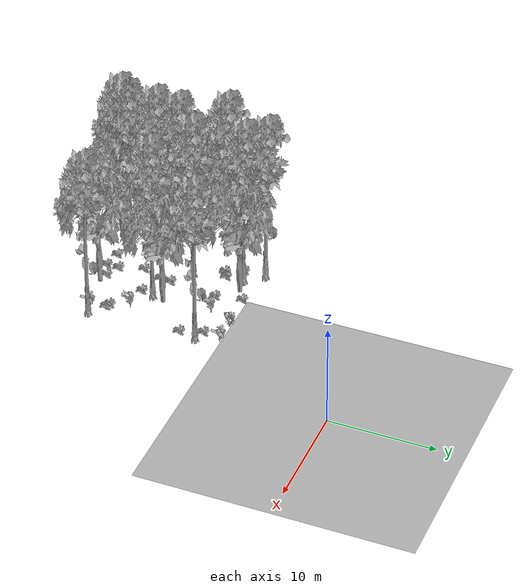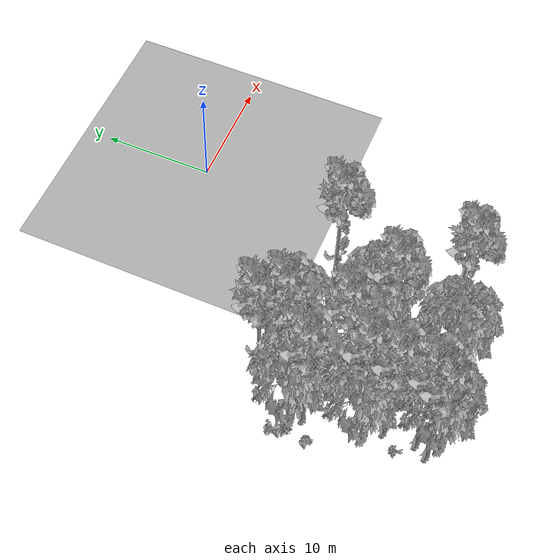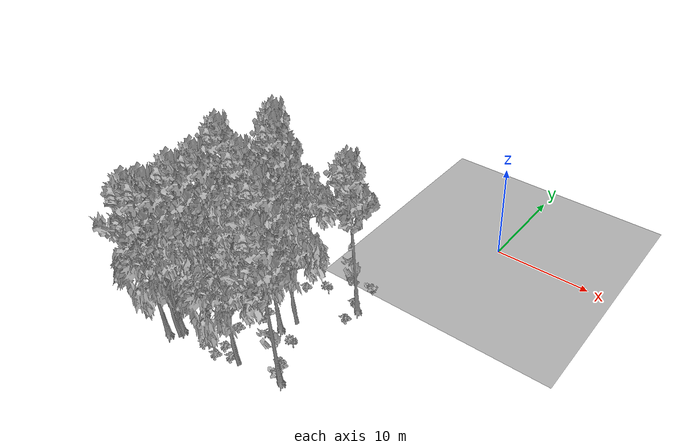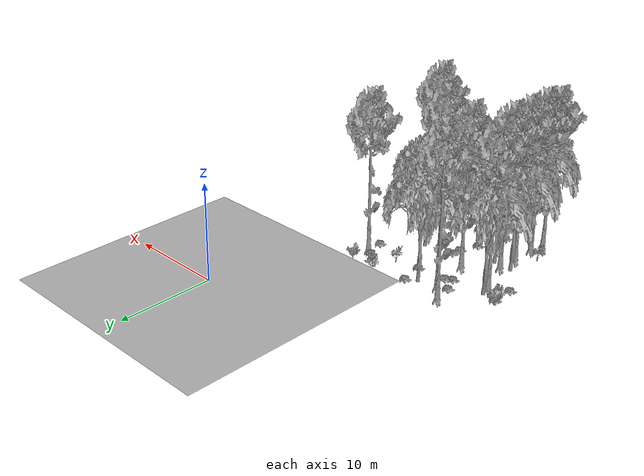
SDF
<sdf version="1.7">
 <world name="default">
  <model name="ground_plane">
   <static>1</static>
   <link name="link">
    <collision name="collision">
     <pose>-50 0 0 0 -0 0</pose>
     <geometry><plane><normal>0 0 1</normal><size>80 80</size></plane></geometry>
     <surface><contact><ode><min_depth>0.01</min_depth><max_vel>0</max_vel></ode></contact></surface>
    </collision>
    <visual name="grass">
     <cast_shadows>0</cast_shadows>
     <geometry>
      <mesh>
       <scale>0.46714285714285714 0.46714285714285714 0.1</scale>
       <uri>file://grass_plane/meshes/grass_plane.dae</uri>
      </mesh>
     </geometry>
    </visual>
   </link>
  </model>
  <model name="Tree 7">
   <static>1</static>
   <pose>-9.91721672211478 -19.705225154479045 0 1.57079 -0 0</pose>
   <link name="link">
    <collision name="collision">
     <geometry><mesh><scale>3.5 5 3.5</scale><uri>model://tree_2/meshes/tree_2.obj</uri></mesh></geometry>
    </collision>
    <visual name="visual">
     <geometry><mesh><scale>3.5 5 3.5</scale><uri>model://tree_2/meshes/tree_2.obj</uri></mesh></geometry>
    </visual>
   </link>
  </model>
  <model name="Tree 54">
   <static>1</static>
   <pose>-17.710755358752795 -26.39936232962456 0 1.57079 -0 0</pose>
   <link name="link">
    <collision name="collision">
     <geometry><mesh><scale>3.5 5 3.5</scale><uri>model://tree_9/meshes/tree_9.obj</uri></mesh></geometry>
    </collision>
    <visual name="visual">
     <geometry><mesh><scale>3.5 5 3.5</scale><uri>model://tree_9/meshes/tree_9.obj</uri></mesh></geometry>
    </visual>
   </link>
  </model>
  <model name="Tree 73">
   <static>1</static>
   <pose>-17.76514542164429 -23.691260203305006 0 1.57079 -0 0</pose>
   <link name="link">
    <collision name="collision">
     <geometry><mesh><scale>3.5 5 3.5</scale><uri>model://tree_9/meshes/tree_9.obj</uri></mesh></geometry>
    </collision>
    <visual name="visual">
     <geometry><mesh><scale>3.5 5 3.5</scale><uri>model://tree_9/meshes/tree_9.obj</uri></mesh></geometry>
    </visual>
   </link>
  </model>
  <model name="Tree 135">
   <static>1</static>
   <pose>-15.737919671115595 -14.26291653973152 0 1.57079 -0 0</pose>
   <link name="link">
    <collision name="collision">
     <geometry><mesh><scale>3.5 5 3.5</scale><uri>model://tree_9/meshes/tree_9.obj</uri></mesh></geometry>
    </collision>
    <visual name="visual">
     <geometry><mesh><scale>3.5 5 3.5</scale><uri>model://tree_9/meshes/tree_9.obj</uri></mesh></geometry>
    </visual>
   </link>
  </model>
  <model name="Tree 173">
   <static>1</static>
   <pose>-17.65346674269135 -21.420033571382895 0 1.57079 -0 0</pose>
   <link name="link">
    <collision name="collision">
     <geometry><mesh><scale>3.5 5 3.5</scale><uri>model://tree_9/meshes/tree_9.obj</uri></mesh></geometry>
    </collision>
    <visual name="visual">
     <geometry><mesh><scale>3.5 5 3.5</scale><uri>model://tree_9/meshes/tree_9.obj</uri></mesh></geometry>
    </visual>
   </link>
  </model>
  <model name="Tree 214">
   <static>1</static>
   <pose>-6.256352994503658 -25.466916737139194 0 1.57079 -0 0</pose>
   <link name="link">
    <collision name="collision">
     <geometry><mesh><scale>3.5 5 3.5</scale><uri>model://tree_9/meshes/tree_9.obj</uri></mesh></geometry>
    </collision>
    <visual name="visual">
     <geometry><mesh><scale>3.5 5 3.5</scale><uri>model://tree_9/meshes/tree_9.obj</uri></mesh></geometry>
    </visual>
   </link>
  </model>
  <model name="Tree 216">
   <static>1</static>
   <pose>-14.936506121851796 -18.89699828799584 0 1.57079 -0 0</pose>
   <link name="link">
    <collision name="collision">
     <geometry><mesh><scale>3.5 5 3.5</scale><uri>model://tree_9/meshes/tree_9.obj</uri></mesh></geometry>
    </collision>
    <visual name="visual">
     <geometry><mesh><scale>3.5 5 3.5</scale><uri>model://tree_9/meshes/tree_9.obj</uri></mesh></geometry>
    </visual>
   </link>
  </model>
  <model name="Tree 225">
   <static>1</static>
   <pose>-16.878159743785982 -21.756091137322215 0 1.57079 -0 0</pose>
   <link name="link">
    <collision name="collision">
     <geometry><mesh><scale>3.5 5 3.5</scale><uri>model://tree_2/meshes/tree_2.obj</uri></mesh></geometry>
    </collision>
    <visual name="visual">
     <geometry><mesh><scale>3.5 5 3.5</scale><uri>model://tree_2/meshes/tree_2.obj</uri></mesh></geometry>
    </visual>
   </link>
  </model>
  <model name="Tree 407">
   <static>1</static>
   <pose>-18.809957743463087 -21.64953178475183 0 1.57079 -0 0</pose>
   <link name="link">
    <collision name="collision">
     <geometry><mesh><scale>3.5 5 3.5</scale><uri>model://tree_2/meshes/tree_2.obj</uri></mesh></geometry>
    </collision>
    <visual name="visual">
     <geometry><mesh><scale>3.5 5 3.5</scale><uri>model://tree_2/meshes/tree_2.obj</uri></mesh></geometry>
    </visual>
   </link>
  </model>
  <model name="Tree 430">
   <static>1</static>
   <pose>-10.585680097771792 -26.238406518092148 0 1.57079 -0 0</pose>
   <link name="link">
    <collision name="collision">
     <geometry><mesh><scale>3.5 5 3.5</scale><uri>model://tree_2/meshes/tree_2.obj</uri></mesh></geometry>
    </collision>
    <visual name="visual">
     <geometry><mesh><scale>3.5 5 3.5</scale><uri>model://tree_2/meshes/tree_2.obj</uri></mesh></geometry>
    </visual>
   </link>
  </model>
  <model name="Tree 450">
   <static>1</static>
   <pose>-17.30246695253707 -27.036633931299825 0 1.57079 -0 0</pose>
   <link name="link">
    <collision name="collision">
     <geometry><mesh><scale>3.5 5 3.5</scale><uri>model://tree_2/meshes/tree_2.obj</uri></mesh></geometry>
    </collision>
    <visual name="visual">
     <geometry><mesh><scale>3.5 5 3.5</scale><uri>model://tree_2/meshes/tree_2.obj</uri></mesh></geometry>
    </visual>
   </link>
  </model>
  <model name="Tree 513">
   <static>1</static>
   <pose>-6.413283700891597 -15.064738168379428 0 1.57079 -0 0</pose>
   <link name="link">
    <collision name="collision">
     <geometry><mesh><scale>3.5 5 3.5</scale><uri>model://tree_9/meshes/tree_9.obj</uri></mesh></geometry>
    </collision>
    <visual name="visual">
     <geometry><mesh><scale>3.5 5 3.5</scale><uri>model://tree_9/meshes/tree_9.obj</uri></mesh></geometry>
    </visual>
   </link>
  </model>
  <model name="Tree 527">
   <static>1</static>
   <pose>-18.360338973357162 -27.45377638580254 0 1.57079 -0 0</pose>
   <link name="link">
    <collision name="collision">
     <geometry><mesh><scale>3.5 5 3.5</scale><uri>model://tree_9/meshes/tree_9.obj</uri></mesh></geometry>
    </collision>
    <visual name="visual">
     <geometry><mesh><scale>3.5 5 3.5</scale><uri>model://tree_9/meshes/tree_9.obj</uri></mesh></geometry>
    </visual>
   </link>
  </model>
  <model name="Tree 541">
   <static>1</static>
   <pose>-17.09179222391935 -12.640737541273293 0 1.57079 -0 0</pose>
   <link name="link">
    <collision name="collision">
     <geometry><mesh><scale>3.5 5 3.5</scale><uri>model://tree_9/meshes/tree_9.obj</uri></mesh></geometry>
    </collision>
    <visual name="visual">
     <geometry><mesh><scale>3.5 5 3.5</scale><uri>model://tree_9/meshes/tree_9.obj</uri></mesh></geometry>
    </visual>
   </link>
  </model>
  <model name="Tree 570">
   <static>1</static>
   <pose>-19.642768826614297 -16.31144040488615 0 1.57079 -0 0</pose>
   <link name="link">
    <collision name="collision">
     <geometry><mesh><scale>3.5 5 3.5</scale><uri>model://tree_2/meshes/tree_2.obj</uri></mesh></geometry>
    </collision>
    <visual name="visual">
     <geometry><mesh><scale>3.5 5 3.5</scale><uri>model://tree_2/meshes/tree_2.obj</uri></mesh></geometry>
    </visual>
   </link>
  </model>
  <model name="Tree 592">
   <static>1</static>
   <pose>-10.60628654105522 -21.030751804089192 0 1.57079 -0 0</pose>
   <link name="link">
    <collision name="collision">
     <geometry><mesh><scale>3.5 5 3.5</scale><uri>model://tree_9/meshes/tree_9.obj</uri></mesh></geometry>
    </collision>
    <visual name="visual">
     <geometry><mesh><scale>3.5 5 3.5</scale><uri>model://tree_9/meshes/tree_9.obj</uri></mesh></geometry>
    </visual>
   </link>
  </model>
  <model name="Tree 624">
   <static>1</static>
   <pose>-19.289551704786003 -17.352481598600598 0 1.57079 -0 0</pose>
   <link name="link">
    <collision name="collision">
     <geometry><mesh><scale>3.5 5 3.5</scale><uri>model://tree_9/meshes/tree_9.obj</uri></mesh></geometry>
    </collision>
    <visual name="visual">
     <geometry><mesh><scale>3.5 5 3.5</scale><uri>model://tree_9/meshes/tree_9.obj</uri></mesh></geometry>
    </visual>
   </link>
  </model>
  <model name="Tree 626">
   <static>1</static>
   <pose>-13.913481211768751 -13.856674592326286 0 1.57079 -0 0</pose>
   <link name="link">
    <collision name="collision">
     <geometry><mesh><scale>3.5 5 3.5</scale><uri>model://tree_2/meshes/tree_2.obj</uri></mesh></geometry>
    </collision>
    <visual name="visual">
     <geometry><mesh><scale>3.5 5 3.5</scale><uri>model://tree_2/meshes/tree_2.obj</uri></mesh></geometry>
    </visual>
   </link>
  </model>
  <model name="Bush 1">
   <static>1</static>
   <pose>-13.000303820560038 -26.70675213427949 0 1.57079 -0 0</pose>
   <link name="link">
    <collision name="collision">
     <geometry><mesh><scale>2 2 2</scale><uri>model://bush_2/meshes/bush_2.obj</uri></mesh></geometry>
     <surface><contact><collide_without_contact>false</collide_without_contact></contact></surface>
    </collision>
    <visual name="visual">
     <geometry><mesh><scale>2 2 2</scale><uri>model://bush_2/meshes/bush_2.obj</uri></mesh></geometry>
    </visual>
   </link>
  </model>
  <model name="Bush 9">
   <static>1</static>
   <pose>-15.450037730005189 -15.872649282570617 0 1.57079 -0 0</pose>
   <link name="link">
    <collision name="collision">
     <geometry><mesh><scale>2 2 2</scale><uri>model://bush_2/meshes/bush_2.obj</uri></mesh></geometry>
     <surface><contact><collide_without_contact>false</collide_without_contact></contact></surface>
    </collision>
    <visual name="visual">
     <geometry><mesh><scale>2 2 2</scale><uri>model://bush_2/meshes/bush_2.obj</uri></mesh></geometry>
    </visual>
   </link>
  </model>
  <model name="Bush 90">
   <static>1</static>
   <pose>-21.056077198665726 -16.07867374437209 0 1.57079 -0 0</pose>
   <link name="link">
    <collision name="collision">
     <geometry><mesh><scale>2 2 2</scale><uri>model://bush_2/meshes/bush_2.obj</uri></mesh></geometry>
     <surface><contact><collide_without_contact>false</collide_without_contact></contact></surface>
    </collision>
    <visual name="visual">
     <geometry><mesh><scale>2 2 2</scale><uri>model://bush_2/meshes/bush_2.obj</uri></mesh></geometry>
    </visual>
   </link>
  </model>
  <model name="Bush 91">
   <static>1</static>
   <pose>-6.5814665120386735 -16.685199251902052 0 1.57079 -0 0</pose>
   <link name="link">
    <collision name="collision">
     <geometry><mesh><scale>2 2 2</scale><uri>model://bush_2/meshes/bush_2.obj</uri></mesh></geometry>
     <surface><contact><collide_without_contact>false</collide_without_contact></contact></surface>
    </collision>
    <visual name="visual">
     <geometry><mesh><scale>2 2 2</scale><uri>model://bush_2/meshes/bush_2.obj</uri></mesh></geometry>
    </visual>
   </link>
  </model>
  <model name="Bush 151">
   <static>1</static>
   <pose>-13.713677691368996 -23.254318507478704 0 1.57079 -0 0</pose>
   <link name="link">
    <collision name="collision">
     <geometry><mesh><scale>2 2 2</scale><uri>model://bush_2/meshes/bush_2.obj</uri></mesh></geometry>
     <surface><contact><collide_without_contact>false</collide_without_contact></contact></surface>
    </collision>
    <visual name="visual">
     <geometry><mesh><scale>2 2 2</scale><uri>model://bush_2/meshes/bush_2.obj</uri></mesh></geometry>
    </visual>
   </link>
  </model>
  <model name="Bush 154">
   <static>1</static>
   <pose>-16.811239485140025 -14.638406824062642 0 1.57079 -0 0</pose>
   <link name="link">
    <collision name="collision">
     <geometry><mesh><scale>2 2 2</scale><uri>model://bush_2/meshes/bush_2.obj</uri></mesh></geometry>
     <surface><contact><collide_without_contact>false</collide_without_contact></contact></surface>
    </collision>
    <visual name="visual">
     <geometry><mesh><scale>2 2 2</scale><uri>model://bush_2/meshes/bush_2.obj</uri></mesh></geometry>
    </visual>
   </link>
  </model>
  <model name="Bush 174">
   <static>1</static>
   <pose>-11.661779695205912 -26.12503272897517 0 1.57079 -0 0</pose>
   <link name="link">
    <collision name="collision">
     <geometry><mesh><scale>2 2 2</scale><uri>model://bush_2/meshes/bush_2.obj</uri></mesh></geometry>
     <surface><contact><collide_without_contact>false</collide_without_contact></contact></surface>
    </collision>
    <visual name="visual">
     <geometry><mesh><scale>2 2 2</scale><uri>model://bush_2/meshes/bush_2.obj</uri></mesh></geometry>
    </visual>
   </link>
  </model>
  <model name="Bush 186">
   <static>1</static>
   <pose>-12.39652519908267 -15.668820690411465 0 1.57079 -0 0</pose>
   <link name="link">
    <collision name="collision">
     <geometry><mesh><scale>2 2 2</scale><uri>model://bush_2/meshes/bush_2.obj</uri></mesh></geometry>
     <surface><contact><collide_without_contact>false</collide_without_contact></contact></surface>
    </collision>
    <visual name="visual">
     <geometry><mesh><scale>2 2 2</scale><uri>model://bush_2/meshes/bush_2.obj</uri></mesh></geometry>
    </visual>
   </link>
  </model>
  <model name="Bush 201">
   <static>1</static>
   <pose>-7.258293915355338 -14.587627820209814 0 1.57079 -0 0</pose>
   <link name="link">
    <collision name="collision">
     <geometry><mesh><scale>2 2 2</scale><uri>model://bush_2/meshes/bush_2.obj</uri></mesh></geometry>
     <surface><contact><collide_without_contact>false</collide_without_contact></contact></surface>
    </collision>
    <visual name="visual">
     <geometry><mesh><scale>2 2 2</scale><uri>model://bush_2/meshes/bush_2.obj</uri></mesh></geometry>
    </visual>
   </link>
  </model>
  <model name="Bush 203">
   <static>1</static>
   <pose>-7.388267748502454 -24.227992442030136 0 1.57079 -0 0</pose>
   <link name="link">
    <collision name="collision">
     <geometry><mesh><scale>2 2 2</scale><uri>model://bush_2/meshes/bush_2.obj</uri></mesh></geometry>
     <surface><contact><collide_without_contact>false</collide_without_contact></contact></surface>
    </collision>
    <visual name="visual">
     <geometry><mesh><scale>2 2 2</scale><uri>model://bush_2/meshes/bush_2.obj</uri></mesh></geometry>
    </visual>
   </link>
  </model>
  <model name="Bush 228">
   <static>1</static>
   <pose>-14.749391879338031 -26.445563575035074 0 1.57079 -0 0</pose>
   <link name="link">
    <collision name="collision">
     <geometry><mesh><scale>2 2 2</scale><uri>model://bush_2/meshes/bush_2.obj</uri></mesh></geometry>
     <surface><contact><collide_without_contact>false</collide_without_contact></contact></surface>
    </collision>
    <visual name="visual">
     <geometry><mesh><scale>2 2 2</scale><uri>model://bush_2/meshes/bush_2.obj</uri></mesh></geometry>
    </visual>
   </link>
  </model>
  <model name="Bush 270">
   <static>1</static>
   <pose>-10.68382501498046 -22.149780988533916 0 1.57079 -0 0</pose>
   <link name="link">
    <collision name="collision">
     <geometry><mesh><scale>2 2 2</scale><uri>model://bush_2/meshes/bush_2.obj</uri></mesh></geometry>
     <surface><contact><collide_without_contact>false</collide_without_contact></contact></surface>
    </collision>
    <visual name="visual">
     <geometry><mesh><scale>2 2 2</scale><uri>model://bush_2/meshes/bush_2.obj</uri></mesh></geometry>
    </visual>
   </link>
  </model>
  <model name="Bush 386">
   <static>1</static>
   <pose>-12.976439032233497 -21.310434857553773 0 1.57079 -0 0</pose>
   <link name="link">
    <collision name="collision">
     <geometry><mesh><scale>2 2 2</scale><uri>model://bush_2/meshes/bush_2.obj</uri></mesh></geometry>
     <surface><contact><collide_without_contact>false</collide_without_contact></contact></surface>
    </collision>
    <visual name="visual">
     <geometry><mesh><scale>2 2 2</scale><uri>model://bush_2/meshes/bush_2.obj</uri></mesh></geometry>
    </visual>
   </link>
  </model>
  <model name="Bush 423">
   <static>1</static>
   <pose>-6.593890214512847 -25.503736649104596 0 1.57079 -0 0</pose>
   <link name="link">
    <collision name="collision">
     <geometry><mesh><scale>2 2 2</scale><uri>model://bush_0/meshes/bush_0.obj</uri></mesh></geometry>
     <surface><contact><collide_without_contact>false</collide_without_contact></contact></surface>
    </collision>
    <visual name="visual">
     <geometry><mesh><scale>2 2 2</scale><uri>model://bush_0/meshes/bush_0.obj</uri></mesh></geometry>
    </visual>
   </link>
  </model>
  <model name="Bush 452">
   <static>1</static>
   <pose>-20.945067369829147 -16.66138000502963 0 1.57079 -0 0</pose>
   <link name="link">
    <collision name="collision">
     <geometry><mesh><scale>2 2 2</scale><uri>model://bush_4/meshes/bush_4.obj</uri></mesh></geometry>
     <surface><contact><collide_without_contact>false</collide_without_contact></contact></surface>
    </collision>
    <visual name="visual">
     <geometry><mesh><scale>2 2 2</scale><uri>model://bush_4/meshes/bush_4.obj</uri></mesh></geometry>
    </visual>
   </link>
  </model>
  <model name="Bush 468">
   <static>1</static>
   <pose>-10.008704041752907 -15.038046767926339 0 1.57079 -0 0</pose>
   <link name="link">
    <collision name="collision">
     <geometry><mesh><scale>2 2 2</scale><uri>model://bush_5/meshes/bush_5.obj</uri></mesh></geometry>
     <surface><contact><collide_without_contact>false</collide_without_contact></contact></surface>
    </collision>
    <visual name="visual">
     <geometry><mesh><scale>2 2 2</scale><uri>model://bush_5/meshes/bush_5.obj</uri></mesh></geometry>
    </visual>
   </link>
  </model>
  <model name="Bush 471">
   <static>1</static>
   <pose>-13.003968517751602 -25.538660528214887 0 1.57079 -0 0</pose>
   <link name="link">
    <collision name="collision">
     <geometry><mesh><scale>2 2 2</scale><uri>model://bush_2/meshes/bush_2.obj</uri></mesh></geometry>
     <surface><contact><collide_without_contact>false</collide_without_contact></contact></surface>
    </collision>
    <visual name="visual">
     <geometry><mesh><scale>2 2 2</scale><uri>model://bush_2/meshes/bush_2.obj</uri></mesh></geometry>
    </visual>
   </link>
  </model>
  <model name="Bush 517">
   <static>1</static>
   <pose>-21.068241916392605 -18.381747650659072 0 1.57079 -0 0</pose>
   <link name="link">
    <collision name="collision">
     <geometry><mesh><scale>2 2 2</scale><uri>model://bush_2/meshes/bush_2.obj</uri></mesh></geometry>
     <surface><contact><collide_without_contact>false</collide_without_contact></contact></surface>
    </collision>
    <visual name="visual">
     <geometry><mesh><scale>2 2 2</scale><uri>model://bush_2/meshes/bush_2.obj</uri></mesh></geometry>
    </visual>
   </link>
  </model>
  <model name="Bush 524">
   <static>1</static>
   <pose>-6.52961934328124 -12.718894879257583 0 1.57079 -0 0</pose>
   <link name="link">
    <collision name="collision">
     <geometry><mesh><scale>2 2 2</scale><uri>model://bush_0/meshes/bush_0.obj</uri></mesh></geometry>
     <surface><contact><collide_without_contact>false</collide_without_contact></contact></surface>
    </collision>
    <visual name="visual">
     <geometry><mesh><scale>2 2 2</scale><uri>model://bush_0/meshes/bush_0.obj</uri></mesh></geometry>
    </visual>
   </link>
  </model>
  <model name="Bush 540">
   <static>1</static>
   <pose>-19.436401593730515 -24.95012975587666 0 1.57079 -0 0</pose>
   <link name="link">
    <collision name="collision">
     <geometry><mesh><scale>2 2 2</scale><uri>model://bush_5/meshes/bush_5.obj</uri></mesh></geometry>
     <surface><contact><collide_without_contact>false</collide_without_contact></contact></surface>
    </collision>
    <visual name="visual">
     <geometry><mesh><scale>2 2 2</scale><uri>model://bush_5/meshes/bush_5.obj</uri></mesh></geometry>
    </visual>
   </link>
  </model>
  <model name="Bush 541">
   <static>1</static>
   <pose>-12.84454394856612 -13.18144553746146 0 1.57079 -0 0</pose>
   <link name="link">
    <collision name="collision">
     <geometry><mesh><scale>2 2 2</scale><uri>model://bush_2/meshes/bush_2.obj</uri></mesh></geometry>
     <surface><contact><collide_without_contact>false</collide_without_contact></contact></surface>
    </collision>
    <visual name="visual">
     <geometry><mesh><scale>2 2 2</scale><uri>model://bush_2/meshes/bush_2.obj</uri></mesh></geometry>
    </visual>
   </link>
  </model>
  <model name="Bush 552">
   <static>1</static>
   <pose>-12.87104839896439 -20.281789329044678 0 1.57079 -0 0</pose>
   <link name="link">
    <collision name="collision">
     <geometry><mesh><scale>2 2 2</scale><uri>model://bush_2/meshes/bush_2.obj</uri></mesh></geometry>
     <surface><contact><collide_without_contact>false</collide_without_contact></contact></surface>
    </collision>
    <visual name="visual">
     <geometry><mesh><scale>2 2 2</scale><uri>model://bush_2/meshes/bush_2.obj</uri></mesh></geometry>
    </visual>
   </link>
  </model>
  <model name="Bush 556">
   <static>1</static>
   <pose>-7.761081195268549 -24.021790385601083 0 1.57079 -0 0</pose>
   <link name="link">
    <collision name="collision">
     <geometry><mesh><scale>2 2 2</scale><uri>model://bush_2/meshes/bush_2.obj</uri></mesh></geometry>
     <surface><contact><collide_without_contact>false</collide_without_contact></contact></surface>
    </collision>
    <visual name="visual">
     <geometry><mesh><scale>2 2 2</scale><uri>model://bush_2/meshes/bush_2.obj</uri></mesh></geometry>
    </visual>
   </link>
  </model>
  <model name="Bush 558">
   <static>1</static>
   <pose>-21.365539196305267 -15.402739281487214 0 1.57079 -0 0</pose>
   <link name="link">
    <collision name="collision">
     <geometry><mesh><scale>2 2 2</scale><uri>model://bush_0/meshes/bush_0.obj</uri></mesh></geometry>
     <surface><contact><collide_without_contact>false</collide_without_contact></contact></surface>
    </collision>
    <visual name="visual">
     <geometry><mesh><scale>2 2 2</scale><uri>model://bush_0/meshes/bush_0.obj</uri></mesh></geometry>
    </visual>
   </link>
  </model>
  <model name="Bush 590">
   <static>1</static>
   <pose>-7.975455025911593 -22.067241264538218 0 1.57079 -0 0</pose>
   <link name="link">
    <collision name="collision">
     <geometry><mesh><scale>2 2 2</scale><uri>model://bush_5/meshes/bush_5.obj</uri></mesh></geometry>
     <surface><contact><collide_without_contact>false</collide_without_contact></contact></surface>
    </collision>
    <visual name="visual">
     <geometry><mesh><scale>2 2 2</scale><uri>model://bush_5/meshes/bush_5.obj</uri></mesh></geometry>
    </visual>
   </link>
  </model>
  <model name="Bush 609">
   <static>1</static>
   <pose>-9.050716944600438 -12.837225857469168 0 1.57079 -0 0</pose>
   <link name="link">
    <collision name="collision">
     <geometry><mesh><scale>2 2 2</scale><uri>model://bush_4/meshes/bush_4.obj</uri></mesh></geometry>
     <surface><contact><collide_without_contact>false</collide_without_contact></contact></surface>
    </collision>
    <visual name="visual">
     <geometry><mesh><scale>2 2 2</scale><uri>model://bush_4/meshes/bush_4.obj</uri></mesh></geometry>
    </visual>
   </link>
  </model>
  <model name="Bush 610">
   <static>1</static>
   <pose>-16.102341614519442 -16.24887892352732 0 1.57079 -0 0</pose>
   <link name="link">
    <collision name="collision">
     <geometry><mesh><scale>2 2 2</scale><uri>model://bush_2/meshes/bush_2.obj</uri></mesh></geometry>
     <surface><contact><collide_without_contact>false</collide_without_contact></contact></surface>
    </collision>
    <visual name="visual">
     <geometry><mesh><scale>2 2 2</scale><uri>model://bush_2/meshes/bush_2.obj</uri></mesh></geometry>
    </visual>
   </link>
  </model>
 </world>
</sdf>
